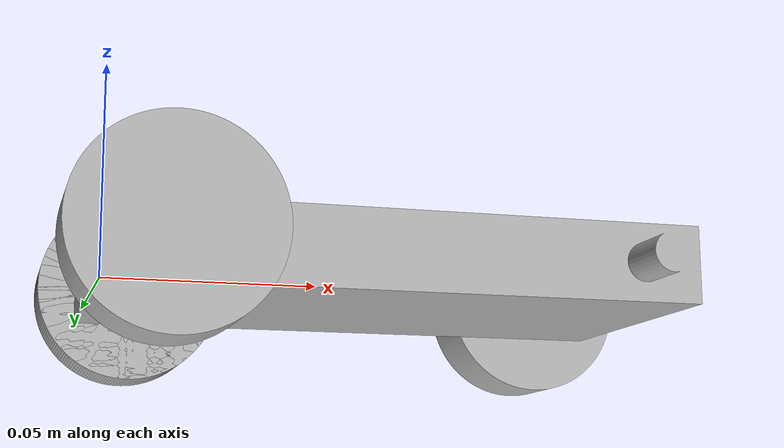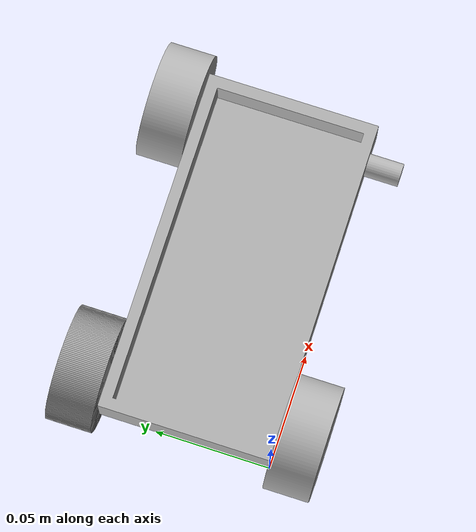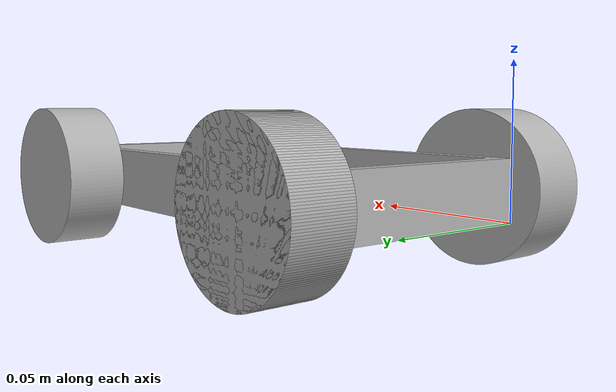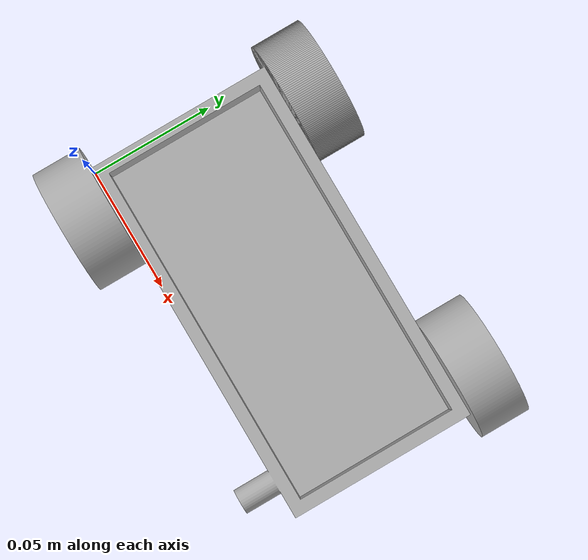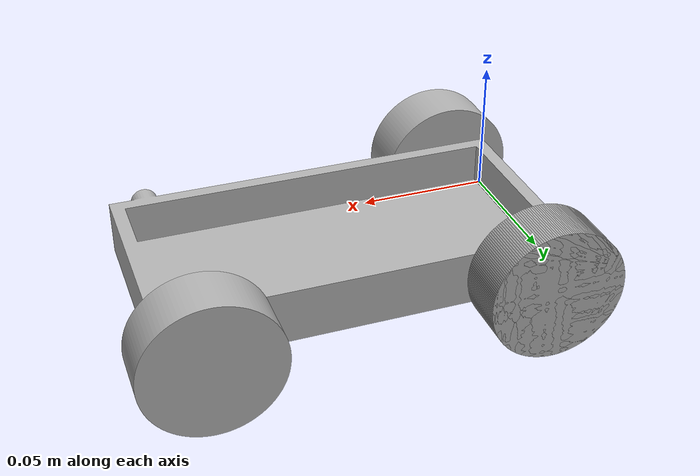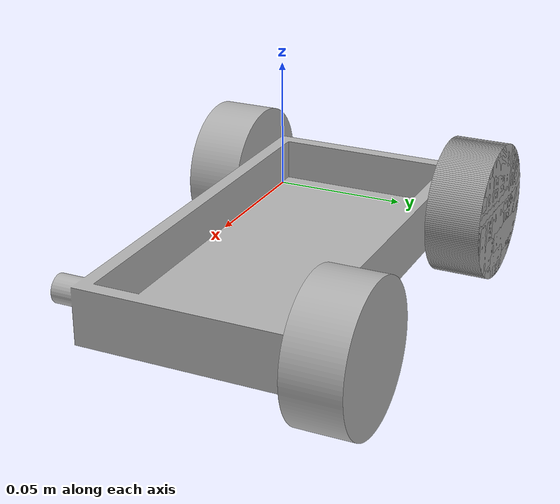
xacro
<?xml version="1.0" ?>
<robot name="SimpleRobot" xmlns:xacro="http://www.ros.org/wiki/xacro">

<xacro:include filename="$(find simple_robot_description)/urdf/materials.xacro" />
<xacro:include filename="$(find simple_robot_description)/urdf/SimpleRobot.trans" />
<xacro:include filename="$(find simple_robot_description)/urdf/SimpleRobot.gazebo" />
<link name="base_link">
  <inertial>
    <origin xyz="0.07500000001124713 0.0375 0.006339005973019191" rpy="0 0 0"/>
    <mass value="0.2516734502470381"/>
    <inertia ixx="0.000189" iyy="0.000591" izz="0.000764" ixy="0.0" iyz="-0.0" ixz="-0.0"/>
  </inertial>
  <visual>
    <origin xyz="0 0 0" rpy="0 0 0"/>
    <geometry>
      <mesh filename="file://$(find simple_robot_description)/meshes/base_link.stl" scale="0.001 0.001 0.001"/>
    </geometry>
    <material name="silver"/>
  </visual>
  <collision>
    <origin xyz="0 0 0" rpy="0 0 0"/>
    <geometry>
      <mesh filename="file://$(find simple_robot_description)/meshes/base_link.stl" scale="0.001 0.001 0.001"/>
    </geometry>
  </collision>
</link>

<link name="Wheel_1">
  <inertial>
    <origin xyz="2.2353357879978386e-10 0.004922680412371129 1.490115999341901e-10" rpy="0 0 0"/>
    <mass value="0.04037731958026277"/>
    <inertia ixx="8e-06" iyy="1.3e-05" izz="8e-06" ixy="-0.0" iyz="-0.0" ixz="-0.0"/>
  </inertial>
  <visual>
    <origin xyz="-0.015 0.015 -0.01" rpy="0 0 0"/>
    <geometry>
      <mesh filename="file://$(find simple_robot_description)/meshes/Wheel_1.stl" scale="0.001 0.001 0.001"/>
    </geometry>
    <material name="silver"/>
  </visual>
  <collision>
    <origin xyz="-0.015 0.015 -0.01" rpy="0 0 0"/>
    <geometry>
      <mesh filename="file://$(find simple_robot_description)/meshes/Wheel_1.stl" scale="0.001 0.001 0.001"/>
    </geometry>
  </collision>
</link>

<link name="Wheel__1__1">
  <inertial>
    <origin xyz="2.2353358053450734e-10 0.004922680412371129 1.490115999341901e-10" rpy="0 0 0"/>
    <mass value="0.04037731958026277"/>
    <inertia ixx="8e-06" iyy="1.3e-05" izz="8e-06" ixy="-0.0" iyz="-0.0" ixz="-0.0"/>
  </inertial>
  <visual>
    <origin xyz="-0.135 0.015 -0.01" rpy="0 0 0"/>
    <geometry>
      <mesh filename="file://$(find simple_robot_description)/meshes/Wheel__1__1.stl" scale="0.001 0.001 0.001"/>
    </geometry>
    <material name="silver"/>
  </visual>
  <collision>
    <origin xyz="-0.135 0.015 -0.01" rpy="0 0 0"/>
    <geometry>
      <mesh filename="file://$(find simple_robot_description)/meshes/Wheel__1__1.stl" scale="0.001 0.001 0.001"/>
    </geometry>
  </collision>
</link>

<link name="Wheel__2__1">
  <inertial>
    <origin xyz="2.2353358053450734e-10 -0.004922680412371122 1.490116224855953e-10" rpy="0 0 0"/>
    <mass value="0.04037731958026277"/>
    <inertia ixx="8e-06" iyy="1.3e-05" izz="8e-06" ixy="0.0" iyz="-0.0" ixz="0.0"/>
  </inertial>
  <visual>
    <origin xyz="-0.135 -0.09 -0.01" rpy="0 0 0"/>
    <geometry>
      <mesh filename="file://$(find simple_robot_description)/meshes/Wheel__2__1.stl" scale="0.001 0.001 0.001"/>
    </geometry>
    <material name="silver"/>
  </visual>
  <collision>
    <origin xyz="-0.135 -0.09 -0.01" rpy="0 0 0"/>
    <geometry>
      <mesh filename="file://$(find simple_robot_description)/meshes/Wheel__2__1.stl" scale="0.001 0.001 0.001"/>
    </geometry>
  </collision>
</link>

<link name="Wheel__3__1">
  <inertial>
    <origin xyz="2.2353357879978386e-10 -0.004922680412371122 1.490116224855953e-10" rpy="0 0 0"/>
    <mass value="0.04037731958026277"/>
    <inertia ixx="8e-06" iyy="1.3e-05" izz="8e-06" ixy="0.0" iyz="-0.0" ixz="0.0"/>
  </inertial>
  <visual>
    <origin xyz="-0.015 -0.09 -0.01" rpy="0 0 0"/>
    <geometry>
      <mesh filename="file://$(find simple_robot_description)/meshes/Wheel__3__1.stl" scale="0.001 0.001 0.001"/>
    </geometry>
    <material name="silver"/>
  </visual>
  <collision>
    <origin xyz="-0.015 -0.09 -0.01" rpy="0 0 0"/>
    <geometry>
      <mesh filename="file://$(find simple_robot_description)/meshes/Wheel__3__1.stl" scale="0.001 0.001 0.001"/>
    </geometry>
  </collision>
</link>

<joint name="Revolute 5" type="continuous">
  <origin xyz="0.015 -0.015 0.01" rpy="0 0 0"/>
  <parent link="base_link"/>
  <child link="Wheel_1"/>
  <axis xyz="0.0 -1.0 0.0"/>
</joint>

<joint name="Revolute 6" type="continuous">
  <origin xyz="0.135 -0.015 0.01" rpy="0 0 0"/>
  <parent link="base_link"/>
  <child link="Wheel__1__1"/>
  <axis xyz="0.0 -1.0 0.0"/>
</joint>

<joint name="Revolute 7" type="continuous">
  <origin xyz="0.135 0.09 0.01" rpy="0 0 0"/>
  <parent link="base_link"/>
  <child link="Wheel__2__1"/>
  <axis xyz="0.0 1.0 0.0"/>
</joint>

<joint name="Revolute 8" type="continuous">
  <origin xyz="0.015 0.09 0.01" rpy="0 0 0"/>
  <parent link="base_link"/>
  <child link="Wheel__3__1"/>
  <axis xyz="0.0 1.0 0.0"/>
</joint>

</robot>

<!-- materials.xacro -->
<robot name="SimpleRobot" xmlns:xacro="http://www.ros.org/wiki/xacro" >

<material name="silver">
  <color rgba="0.700 0.700 0.700 1.000"/>
</material>

</robot>

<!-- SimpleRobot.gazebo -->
<robot name="SimpleRobot" xmlns:xacro="http://www.ros.org/wiki/xacro" >

<xacro:property name="body_color" value="Gazebo/Silver" />

<gazebo>
  <plugin name="control" filename="libgazebo_ros_control.so"/>
</gazebo>
<gazebo reference="base_link">
  <material>${body_color}</material>
  <mu1>0.2</mu1>
  <mu2>0.2</mu2>
  <self_collide>true</self_collide>
  <gravity>true</gravity>
</gazebo>

<gazebo reference="Wheel_1">
  <material>${body_color}</material>
  <mu1>0.2</mu1>
  <mu2>0.2</mu2>
  <self_collide>true</self_collide>
</gazebo>

<gazebo reference="Wheel__1__1">
  <material>${body_color}</material>
  <mu1>0.2</mu1>
  <mu2>0.2</mu2>
  <self_collide>true</self_collide>
</gazebo>

<gazebo reference="Wheel__2__1">
  <material>${body_color}</material>
  <mu1>0.2</mu1>
  <mu2>0.2</mu2>
  <self_collide>true</self_collide>
</gazebo>

<gazebo reference="Wheel__3__1">
  <material>${body_color}</material>
  <mu1>0.2</mu1>
  <mu2>0.2</mu2>
  <self_collide>true</self_collide>
</gazebo>

</robot>
